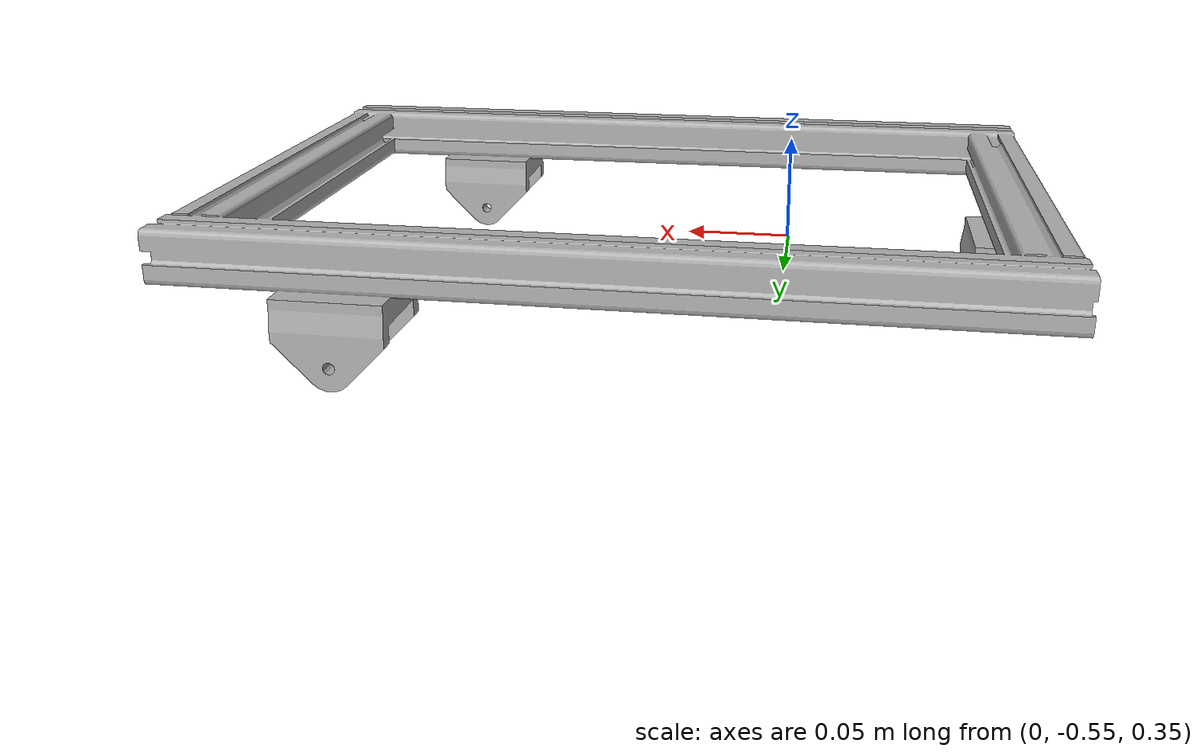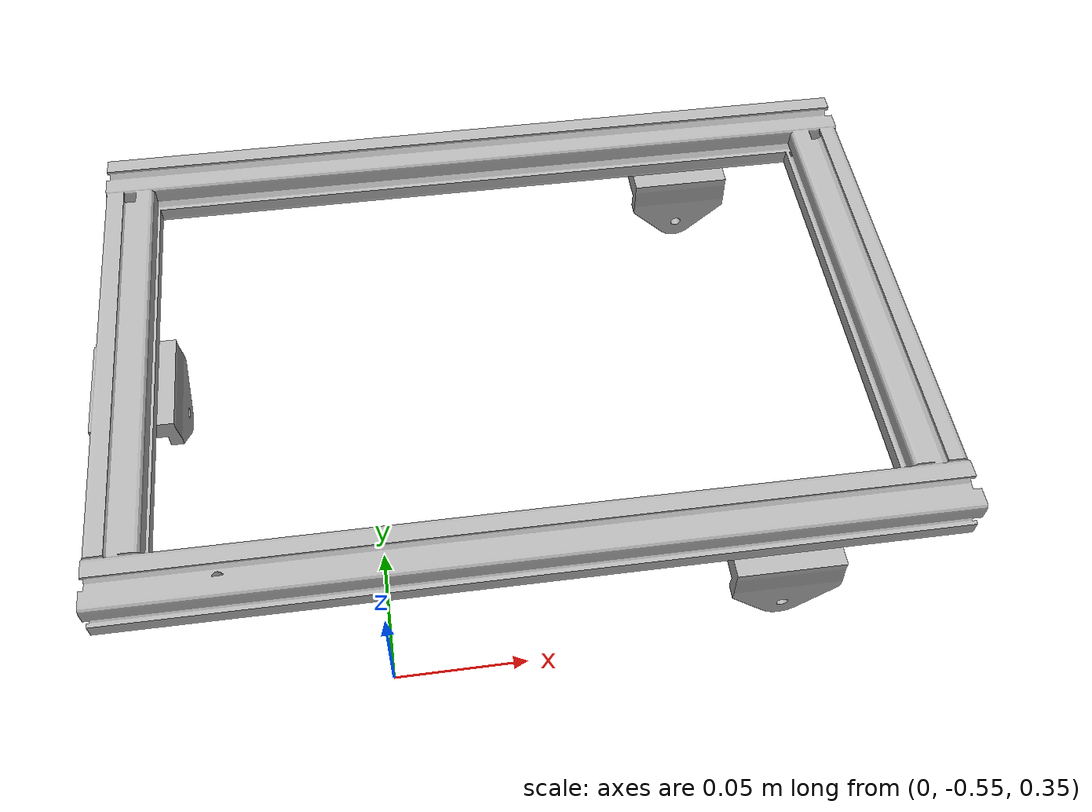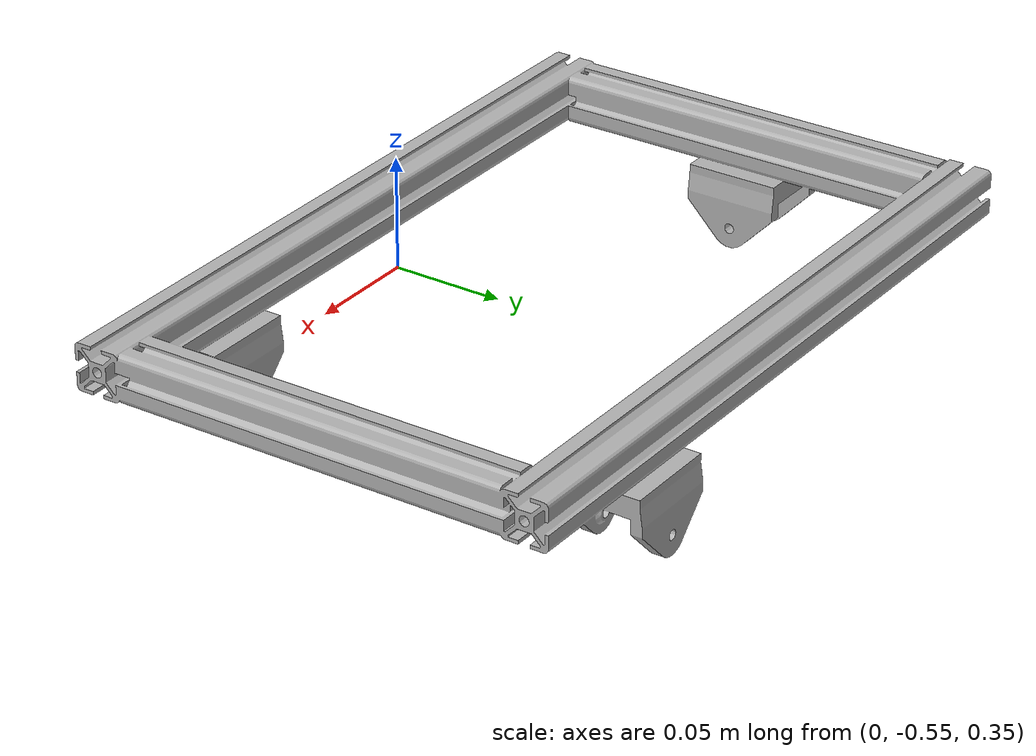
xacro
<?xml version="1.0" ?>
<robot name="URDFv4export" xmlns:xacro="http://www.ros.org/wiki/xacro">

<xacro:include filename="$(find URDFv4export_description)/urdf/materials.xacro" />
<xacro:include filename="$(find URDFv4export_description)/urdf/URDFv4export.trans" />
<xacro:include filename="$(find URDFv4export_description)/urdf/URDFv4export.gazebo" />
<link name="base_link">
  <inertial>
    <origin xyz="-0.002735039502319866 0.0024354309121990096 -0.0072498062462569264" rpy="0 0 0"/>
    <mass value="1.669036100199413"/>
    <inertia ixx="0.010954" iyy="0.021334" izz="0.031913" ixy="-2.8e-05" iyz="0.0" ixz="7.4e-05"/>
  </inertial>
  <visual>
    <origin xyz="0 0 0" rpy="0 0 0"/>
    <geometry>
      <mesh filename="file://$(find URDFv4export_description)/meshes/base_link.stl" scale="0.001 0.001 0.001"/>
    </geometry>
    <material name="silver"/>
  </visual>
  <collision>
    <origin xyz="0 0 0" rpy="0 0 0"/>
    <geometry>
      <mesh filename="file://$(find URDFv4export_description)/meshes/base_link.stl" scale="0.001 0.001 0.001"/>
    </geometry>
  </collision>
</link>

</robot>

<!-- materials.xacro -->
<robot name="URDFv4export" xmlns:xacro="http://www.ros.org/wiki/xacro" >

<material name="silver">
  <color rgba="0.700 0.700 0.700 1.000"/>
</material>

</robot>

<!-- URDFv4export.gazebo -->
<robot name="URDFv4export" xmlns:xacro="http://www.ros.org/wiki/xacro" >

<xacro:property name="body_color" value="Gazebo/Silver" />

<gazebo>
  <plugin name="control" filename="libgazebo_ros_control.so"/>
</gazebo>
<gazebo reference="base_link">
  <material>${body_color}</material>
  <mu1>0.2</mu1>
  <mu2>0.2</mu2>
  <self_collide>true</self_collide>
  <gravity>true</gravity>
</gazebo>

</robot>
